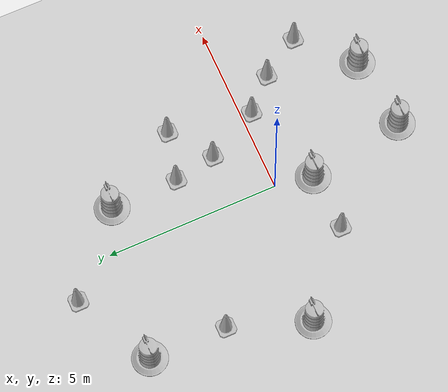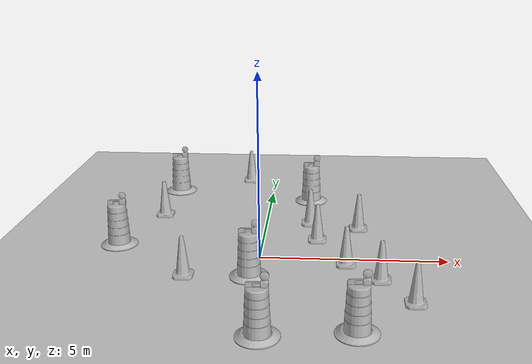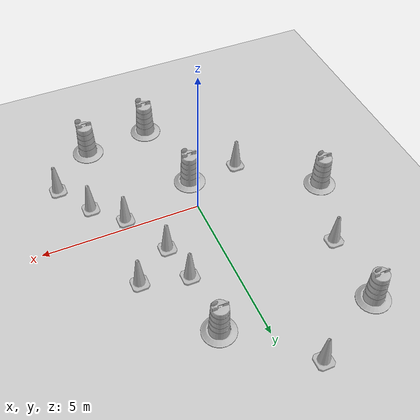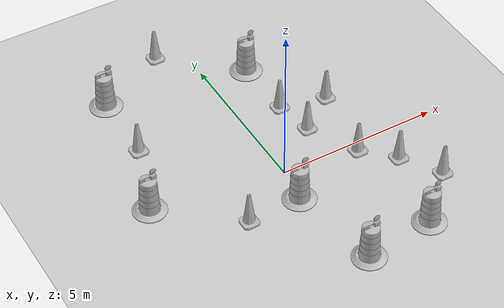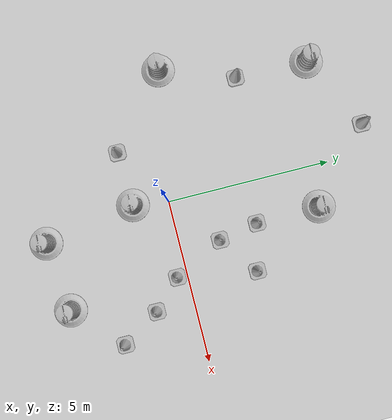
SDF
<sdf version="1.7">
 <world name="default">
  <light name="sun" type="directional">
   <pose>0 0 10 0 -0 0</pose>
   <diffuse>0.8 0.8 0.8 1</diffuse>
   <specular>0.2 0.2 0.2 1</specular>
   <attenuation>
    <range>1000</range>
    <constant>0.9</constant>
    <linear>0.01</linear>
    <quadratic>0.001</quadratic>
   </attenuation>
   <direction>-0.5 0.1 -0.9</direction>
   <spot><inner_angle>0</inner_angle><outer_angle>0</outer_angle><falloff>0</falloff></spot>
  </light>
  <model name="ground_plane">
   <static>1</static>
   <link name="link">
    <collision name="collision">
     <geometry><plane><normal>0 0 1</normal><size>100 100</size></plane></geometry>
     <surface>
      <contact><collide_bitmask>65535</collide_bitmask></contact>
      <friction><ode><mu>100</mu><mu2>50</mu2></ode></friction>
     </surface>
    </collision>
    <visual name="visual">
     <cast_shadows>0</cast_shadows>
     <geometry><plane><normal>0 0 1</normal><size>100 100</size></plane></geometry>
     <material>
      <script><uri>file://media/materials/scripts/gazebo.material</uri><name>Gazebo/Grey</name></script>
     </material>
    </visual>
   </link>
  </model>
  <gravity>0 0 -9.8</gravity>
  <magnetic_field>6e-06 2.3e-05 -4.2e-05</magnetic_field>
  <atmosphere type="adiabatic"/>
  <physics type="ode">
   <max_step_size>0.001</max_step_size>
   <real_time_factor>1</real_time_factor>
   <real_time_update_rate>1000</real_time_update_rate>
  </physics>
  <scene><ambient>0.4 0.4 0.4 1</ambient><background>0.7 0.7 0.7 1</background><shadows>1</shadows></scene>
  <audio><device>default</device></audio>
  <spherical_coordinates>
   <surface_model>EARTH_WGS84</surface_model>
   <latitude_deg>0</latitude_deg>
   <longitude_deg>0</longitude_deg>
   <elevation>0</elevation>
   <heading_deg>0</heading_deg>
  </spherical_coordinates>
  <model name="Construction Barrel">
   <link name="link">
    <inertial>
     <pose>0 0 0.4 0 -0 0</pose>
     <mass>500</mass>
     <inertia><ixx>51.2096</ixx><iyy>51.2096</iyy><izz>25</izz><ixy>0</ixy><ixz>0</ixz><iyz>0</iyz></inertia>
    </inertial>
    <collision name="collision">
     <geometry><mesh><uri>model://construction_barrel/meshes/construction_barrel.dae</uri></mesh></geometry>
    </collision>
    <visual name="visual">
     <geometry><mesh><uri>model://construction_barrel/meshes/construction_barrel.dae</uri></mesh></geometry>
    </visual>
   </link>
   <pose>1.26295 4.39638 1e-06 3e-06 2e-06 -2.3e-05</pose>
  </model>
  <model name="Construction Cone">
   <link name="link">
    <collision name="collision">
     <geometry>
      <mesh><scale>10 10 10</scale><uri>model://construction_cone/meshes/construction_cone.dae</uri></mesh>
     </geometry>
    </collision>
    <visual name="visual">
     <geometry>
      <mesh><scale>10 10 10</scale><uri>model://construction_cone/meshes/construction_cone.dae</uri></mesh>
     </geometry>
    </visual>
    <inertial>
     <inertia><ixx>1</ixx><ixy>0</ixy><ixz>0</ixz><iyy>1</iyy><iyz>0</iyz><izz>1</izz></inertia>
     <mass>1</mass>
    </inertial>
   </link>
   <pose>2.70132 2.08975 -5e-06 -4e-06 1e-06 0</pose>
  </model>
  <model name="Construction Barrel_0">
   <link name="link">
    <inertial>
     <pose>0 0 0.4 0 -0 0</pose>
     <mass>500</mass>
     <inertia><ixx>51.2096</ixx><iyy>51.2096</iyy><izz>25</izz><ixy>0</ixy><ixz>0</ixz><iyz>0</iyz></inertia>
    </inertial>
    <collision name="collision">
     <geometry><mesh><uri>model://construction_barrel/meshes/construction_barrel.dae</uri></mesh></geometry>
    </collision>
    <visual name="visual">
     <geometry><mesh><uri>model://construction_barrel/meshes/construction_barrel.dae</uri></mesh></geometry>
    </visual>
   </link>
   <pose>-3.14492 5.14042 1e-06 3e-06 2e-06 -2.1e-05</pose>
  </model>
  <model name="Construction Barrel_1">
   <link name="link">
    <inertial>
     <pose>0 0 0.4 0 -0 0</pose>
     <mass>500</mass>
     <inertia><ixx>51.2096</ixx><iyy>51.2096</iyy><izz>25</izz><ixy>0</ixy><ixz>0</ixz><iyz>0</iyz></inertia>
    </inertial>
    <collision name="collision">
     <geometry><mesh><uri>model://construction_barrel/meshes/construction_barrel.dae</uri></mesh></geometry>
    </collision>
    <visual name="visual">
     <geometry><mesh><uri>model://construction_barrel/meshes/construction_barrel.dae</uri></mesh></geometry>
    </visual>
   </link>
   <pose>-4.00166 0.661034 1e-06 3e-06 2e-06 -2e-05</pose>
  </model>
  <model name="Construction Cone_0">
   <link name="link">
    <collision name="collision">
     <geometry>
      <mesh><scale>10 10 10</scale><uri>model://construction_cone/meshes/construction_cone.dae</uri></mesh>
     </geometry>
    </collision>
    <visual name="visual">
     <geometry>
      <mesh><scale>10 10 10</scale><uri>model://construction_cone/meshes/construction_cone.dae</uri></mesh>
     </geometry>
    </visual>
    <inertial>
     <inertia><ixx>1</ixx><ixy>0</ixy><ixz>0</ixz><iyy>1</iyy><iyz>0</iyz><izz>1</izz></inertia>
     <mass>1</mass>
    </inertial>
   </link>
   <pose>1.51499 1.21868 -6e-06 -4e-06 0 0</pose>
  </model>
  <model name="Construction Cone_1">
   <link name="link">
    <collision name="collision">
     <geometry>
      <mesh><scale>10 10 10</scale><uri>model://construction_cone/meshes/construction_cone.dae</uri></mesh>
     </geometry>
    </collision>
    <visual name="visual">
     <geometry>
      <mesh><scale>10 10 10</scale><uri>model://construction_cone/meshes/construction_cone.dae</uri></mesh>
     </geometry>
    </visual>
    <inertial>
     <inertia><ixx>1</ixx><ixy>0</ixy><ixz>0</ixz><iyy>1</iyy><iyz>0</iyz><izz>1</izz></inertia>
     <mass>1</mass>
    </inertial>
   </link>
   <pose>3.14632 -1.173 -0 0 -0 0</pose>
  </model>
  <model name="Construction Barrel_2">
   <link name="link">
    <inertial>
     <pose>0 0 0.4 0 -0 0</pose>
     <mass>500</mass>
     <inertia><ixx>51.2096</ixx><iyy>51.2096</iyy><izz>25</izz><ixy>0</ixy><ixz>0</ixz><iyz>0</iyz></inertia>
    </inertial>
    <collision name="collision">
     <geometry><mesh><uri>model://construction_barrel/meshes/construction_barrel.dae</uri></mesh></geometry>
    </collision>
    <visual name="visual">
     <geometry><mesh><uri>model://construction_barrel/meshes/construction_barrel.dae</uri></mesh></geometry>
    </visual>
   </link>
   <pose>-0.171457 -1.09471 -1e-06 3e-06 7e-06 -1.5e-05</pose>
  </model>
  <model name="Construction Cone_2">
   <link name="link">
    <collision name="collision">
     <geometry>
      <mesh><scale>10 10 10</scale><uri>model://construction_cone/meshes/construction_cone.dae</uri></mesh>
     </geometry>
    </collision>
    <visual name="visual">
     <geometry>
      <mesh><scale>10 10 10</scale><uri>model://construction_cone/meshes/construction_cone.dae</uri></mesh>
     </geometry>
    </visual>
    <inertial>
     <inertia><ixx>1</ixx><ixy>0</ixy><ixz>0</ixz><iyy>1</iyy><iyz>0</iyz><izz>1</izz></inertia>
     <mass>1</mass>
    </inertial>
   </link>
   <pose>-3.19762 2.90613 -0 0 -0 0</pose>
  </model>
  <model name="Construction Cone_3">
   <link name="link">
    <collision name="collision">
     <geometry>
      <mesh><scale>10 10 10</scale><uri>model://construction_cone/meshes/construction_cone.dae</uri></mesh>
     </geometry>
    </collision>
    <visual name="visual">
     <geometry>
      <mesh><scale>10 10 10</scale><uri>model://construction_cone/meshes/construction_cone.dae</uri></mesh>
     </geometry>
    </visual>
    <inertial>
     <inertia><ixx>1</ixx><ixy>0</ixy><ixz>0</ixz><iyy>1</iyy><iyz>0</iyz><izz>1</izz></inertia>
     <mass>1</mass>
    </inertial>
   </link>
   <pose>-0.876143 6.29734 -1e-06 1e-06 -2e-06 -0</pose>
  </model>
  <model name="Construction Cone_4">
   <link name="link">
    <collision name="collision">
     <geometry>
      <mesh><scale>10 10 10</scale><uri>model://construction_cone/meshes/construction_cone.dae</uri></mesh>
     </geometry>
    </collision>
    <visual name="visual">
     <geometry>
      <mesh><scale>10 10 10</scale><uri>model://construction_cone/meshes/construction_cone.dae</uri></mesh>
     </geometry>
    </visual>
    <inertial>
     <inertia><ixx>1</ixx><ixy>0</ixy><ixz>0</ixz><iyy>1</iyy><iyz>0</iyz><izz>1</izz></inertia>
     <mass>1</mass>
    </inertial>
   </link>
   <pose>-1.84442 -1.16721 -0 0 -0 0</pose>
  </model>
  <model name="Construction Cone_0_clone">
   <link name="link">
    <collision name="collision">
     <geometry>
      <mesh><scale>10 10 10</scale><uri>model://construction_cone/meshes/construction_cone.dae</uri></mesh>
     </geometry>
    </collision>
    <visual name="visual">
     <geometry>
      <mesh><scale>10 10 10</scale><uri>model://construction_cone/meshes/construction_cone.dae</uri></mesh>
     </geometry>
    </visual>
    <inertial>
     <inertia><ixx>1</ixx><ixy>0</ixy><ixz>0</ixz><iyy>1</iyy><iyz>0</iyz><izz>1</izz></inertia>
     <mass>1</mass>
    </inertial>
   </link>
   <pose>2.29165 -0.316631 -0 0 -0 0</pose>
  </model>
  <model name="Construction Cone_0_clone_0">
   <link name="link">
    <collision name="collision">
     <geometry>
      <mesh><scale>10 10 10</scale><uri>model://construction_cone/meshes/construction_cone.dae</uri></mesh>
     </geometry>
    </collision>
    <visual name="visual">
     <geometry>
      <mesh><scale>10 10 10</scale><uri>model://construction_cone/meshes/construction_cone.dae</uri></mesh>
     </geometry>
    </visual>
    <inertial>
     <inertia><ixx>1</ixx><ixy>0</ixy><ixz>0</ixz><iyy>1</iyy><iyz>0</iyz><izz>1</izz></inertia>
     <mass>1</mass>
    </inertial>
   </link>
   <pose>3.87833 -2.33321 0 -0 -0 -0</pose>
  </model>
  <model name="Construction Cone_0_clone_1">
   <link name="link">
    <collision name="collision">
     <geometry>
      <mesh><scale>10 10 10</scale><uri>model://construction_cone/meshes/construction_cone.dae</uri></mesh>
     </geometry>
    </collision>
    <visual name="visual">
     <geometry>
      <mesh><scale>10 10 10</scale><uri>model://construction_cone/meshes/construction_cone.dae</uri></mesh>
     </geometry>
    </visual>
    <inertial>
     <inertia><ixx>1</ixx><ixy>0</ixy><ixz>0</ixz><iyy>1</iyy><iyz>0</iyz><izz>1</izz></inertia>
     <mass>1</mass>
    </inertial>
   </link>
   <pose>1.29019 2.43309 -8e-06 -6e-06 0 0</pose>
  </model>
  <model name="Construction Barrel_1_clone">
   <link name="link">
    <inertial>
     <pose>0 0 0.4 0 -0 0</pose>
     <mass>500</mass>
     <inertia><ixx>51.2096</ixx><iyy>51.2096</iyy><izz>25</izz><ixy>0</ixy><ixz>0</ixz><iyz>0</iyz></inertia>
    </inertial>
    <collision name="collision">
     <geometry><mesh><uri>model://construction_barrel/meshes/construction_barrel.dae</uri></mesh></geometry>
    </collision>
    <visual name="visual">
     <geometry><mesh><uri>model://construction_barrel/meshes/construction_barrel.dae</uri></mesh></geometry>
    </visual>
   </link>
   <pose>0.31547 -3.93466 0 0 0 -2e-05</pose>
  </model>
  <model name="Construction Barrel_1_clone_0">
   <link name="link">
    <inertial>
     <pose>0 0 0.4 0 -0 0</pose>
     <mass>500</mass>
     <inertia><ixx>51.2096</ixx><iyy>51.2096</iyy><izz>25</izz><ixy>0</ixy><ixz>0</ixz><iyz>0</iyz></inertia>
    </inertial>
    <collision name="collision">
     <geometry><mesh><uri>model://construction_barrel/meshes/construction_barrel.dae</uri></mesh></geometry>
    </collision>
    <visual name="visual">
     <geometry><mesh><uri>model://construction_barrel/meshes/construction_barrel.dae</uri></mesh></geometry>
    </visual>
   </link>
   <pose>2.46805 -3.69596 0 -3e-06 -2e-06 -2.1e-05</pose>
  </model>
 </world>
</sdf>
